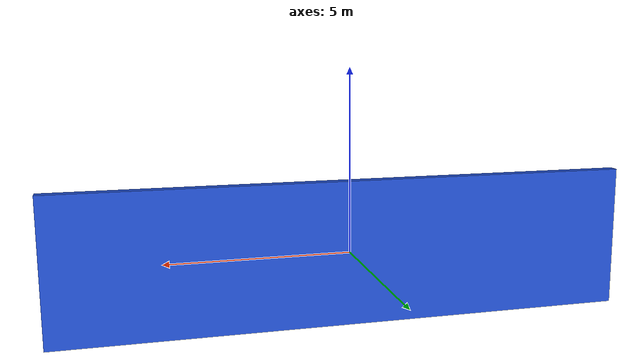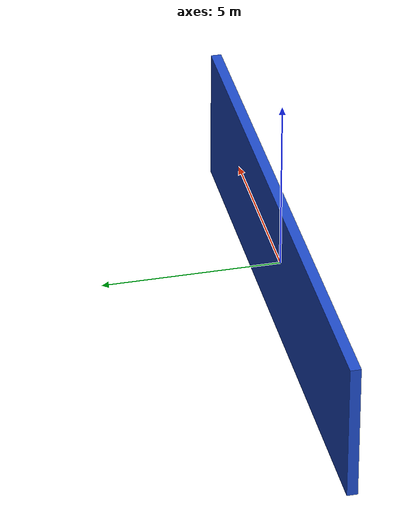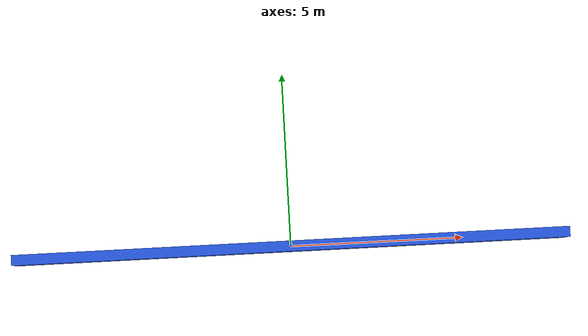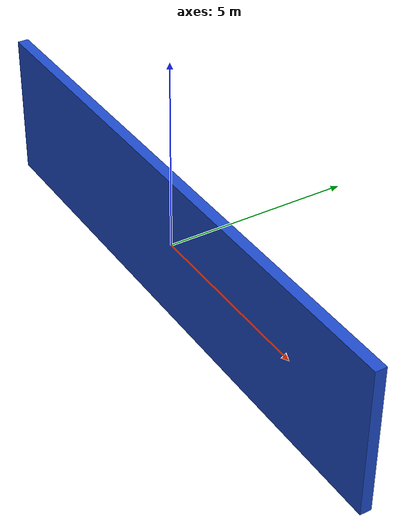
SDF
<?xml version="1.0"?>
<sdf version="1.8">
<model name="moving_shutter">
  <static>false</static>
  <link name="link">
    <gravity>false</gravity>
    <inertial>
      <mass>10</mass>
      <inertia>
        <ixx>5</ixx><iyy>5</iyy><izz>5</izz>
        <ixy>0</ixy><ixz>0</ixz><iyz>0</iyz>
      </inertia>
    </inertial>
    <collision name="collision">
      <geometry>
        <box>
          <size>16 0.3 4</size>
        </box>
      </geometry>
    </collision>
    <visual name="visual">
      <cast_shadows>false</cast_shadows>
      <geometry>
        <box>
          <size>16 0.3 4</size>
        </box>
      </geometry>
      <material>
        <ambient>0.08 0.25 0.75 1</ambient>
        <diffuse>0.12 0.3 0.8 1</diffuse>
        <specular>0.2 0.2 0.2 1</specular>
      </material>
    </visual>
  </link>
</model>
</sdf>
